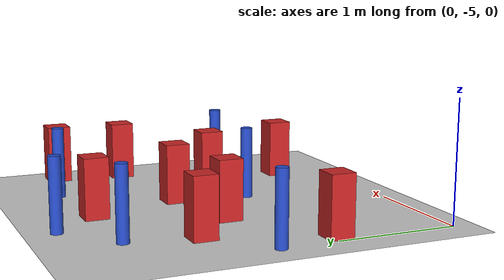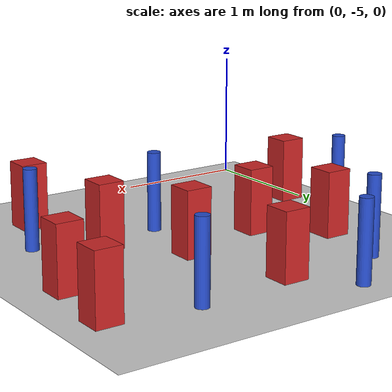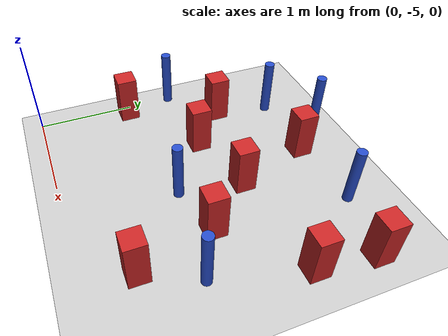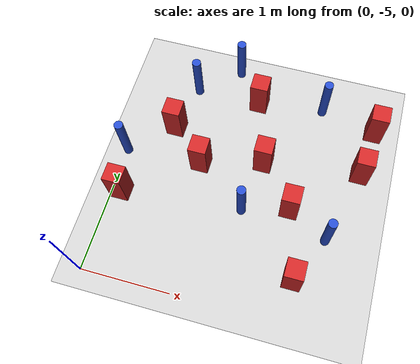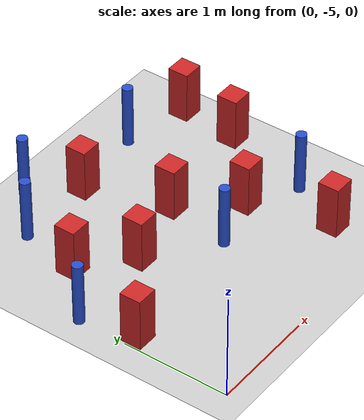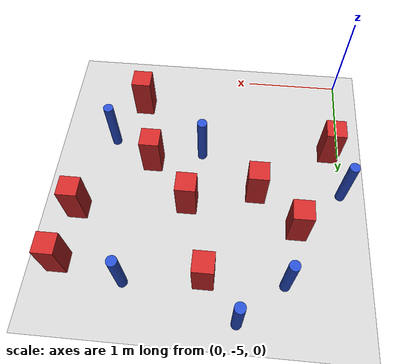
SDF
<sdf version="1.6">
 <world name="default">
  <model name="ground_plane">
   <static>1</static>
   <link name="link">
    <collision name="collision">
     <geometry><plane><normal>0 0 1</normal><size>100 100</size></plane></geometry>
     <surface><friction><ode><mu>100</mu><mu2>50</mu2></ode></friction></surface>
    </collision>
    <visual name="visual">
     <cast_shadows>0</cast_shadows>
     <geometry><plane><normal>0 0 1</normal><size>100 100</size></plane></geometry>
     <material>
      <ambient>1.0 1.0 1.0 1.0</ambient>
      <diffuse>0.8 0.8 0.8 1.0</diffuse>
      <specular>0.01 0.01 0.01 1.000000</specular>
     </material>
    </visual>
   </link>
  </model>
  <model name="pole_obstacle30">
   <static>true</static>
   <pose>2.09955300384 -2.43860249127 7.38925637345e-09 -8.47170692798e-08 1.24976764939e-08 -1.74513093025e-07</pose>
   <link name="link">
    <pose>0 0 0.3 0 -0 0</pose>
    <inertial>
     <mass>1</mass>
     <inertia><ixx>0.145833</ixx><ixy>0</ixy><ixz>0</ixz><iyy>0.145833</iyy><iyz>0</iyz><izz>0.125</izz></inertia>
    </inertial>
    <collision name="collision">
     <geometry><cylinder><radius>0.05</radius><length>.6</length></cylinder></geometry>
    </collision>
    <visual name="visual">
     <geometry><cylinder><radius>0.05</radius><length>.6</length></cylinder></geometry>
     <material>
      <script><name>Gazebo/Blue</name><uri>file://media/materials/scripts/gazebo.material</uri></script>
     </material>
    </visual>
   </link>
  </model>
  <model name="square_post_obstacle41">
   <static>true</static>
   <pose>2.19690369852 -4.53238713483 1.91545236811e-07 -7.35059704564e-06 1.12565212e-07 2.39332434364e-05</pose>
   <link name="link">
    <pose>0 0 0.25 0 -0 0</pose>
    <inertial>
     <mass>100</mass>
     <inertia>
      <ixx>0.166667</ixx>
      <ixy>0</ixy>
      <ixz>0</ixz>
      <iyy>0.166667</iyy>
      <iyz>0</iyz>
      <izz>0.166667</izz>
     </inertia>
    </inertial>
    <collision name="collision"><geometry><box><size>.2 .2 .5</size></box></geometry></collision>
    <visual name="visual">
     <geometry><box><size>.2 .2 .5</size></box></geometry>
     <material>
      <script><name>Gazebo/Red</name><uri>file://media/materials/scripts/gazebo.material</uri></script>
     </material>
    </visual>
   </link>
  </model>
  <model name="pole_obstacle84">
   <static>true</static>
   <pose>0.574053270509 -2.53474685124 7.38925637345e-09 -8.47170692799e-08 1.2497676509e-08 -1.74513093016e-07</pose>
   <link name="link">
    <pose>0 0 0.3 0 -0 0</pose>
    <inertial>
     <mass>1</mass>
     <inertia><ixx>0.145833</ixx><ixy>0</ixy><ixz>0</ixz><iyy>0.145833</iyy><iyz>0</iyz><izz>0.125</izz></inertia>
    </inertial>
    <collision name="collision">
     <geometry><cylinder><radius>0.05</radius><length>.6</length></cylinder></geometry>
    </collision>
    <visual name="visual">
     <geometry><cylinder><radius>0.05</radius><length>.6</length></cylinder></geometry>
     <material>
      <script><name>Gazebo/Blue</name><uri>file://media/materials/scripts/gazebo.material</uri></script>
     </material>
    </visual>
   </link>
  </model>
  <model name="pole_obstacle90">
   <static>true</static>
   <pose>1.47961067431 -3.91612197463 7.38925637345e-09 -8.47170692799e-08 1.24976765053e-08 -1.74513093017e-07</pose>
   <link name="link">
    <pose>0 0 0.3 0 -0 0</pose>
    <inertial>
     <mass>1</mass>
     <inertia><ixx>0.145833</ixx><ixy>0</ixy><ixz>0</ixz><iyy>0.145833</iyy><iyz>0</iyz><izz>0.125</izz></inertia>
    </inertial>
    <collision name="collision">
     <geometry><cylinder><radius>0.05</radius><length>.6</length></cylinder></geometry>
    </collision>
    <visual name="visual">
     <geometry><cylinder><radius>0.05</radius><length>.6</length></cylinder></geometry>
     <material>
      <script><name>Gazebo/Blue</name><uri>file://media/materials/scripts/gazebo.material</uri></script>
     </material>
    </visual>
   </link>
  </model>
  <model name="square_post_obstacle95">
   <static>true</static>
   <pose>1.33881672779 -2.53437425877 1.91545236811e-07 -7.35059704564e-06 1.12565212e-07 2.39332434364e-05</pose>
   <link name="link">
    <pose>0 0 0.25 0 -0 0</pose>
    <inertial>
     <mass>100</mass>
     <inertia>
      <ixx>0.166667</ixx>
      <ixy>0</ixy>
      <ixz>0</ixz>
      <iyy>0.166667</iyy>
      <iyz>0</iyz>
      <izz>0.166667</izz>
     </inertia>
    </inertial>
    <collision name="collision"><geometry><box><size>.2 .2 .5</size></box></geometry></collision>
    <visual name="visual">
     <geometry><box><size>.2 .2 .5</size></box></geometry>
     <material>
      <script><name>Gazebo/Red</name><uri>file://media/materials/scripts/gazebo.material</uri></script>
     </material>
    </visual>
   </link>
  </model>
  <model name="square_post_obstacle97">
   <static>true</static>
   <pose>0.118160823223 -4.04125096551 1.91545236811e-07 -7.35059704564e-06 1.12565212e-07 2.39332434364e-05</pose>
   <link name="link">
    <pose>0 0 0.25 0 -0 0</pose>
    <inertial>
     <mass>100</mass>
     <inertia>
      <ixx>0.166667</ixx>
      <ixy>0</ixy>
      <ixz>0</ixz>
      <iyy>0.166667</iyy>
      <iyz>0</iyz>
      <izz>0.166667</izz>
     </inertia>
    </inertial>
    <collision name="collision"><geometry><box><size>.2 .2 .5</size></box></geometry></collision>
    <visual name="visual">
     <geometry><box><size>.2 .2 .5</size></box></geometry>
     <material>
      <script><name>Gazebo/Red</name><uri>file://media/materials/scripts/gazebo.material</uri></script>
     </material>
    </visual>
   </link>
  </model>
  <model name="square_post_obstacle103">
   <static>true</static>
   <pose>0.885248632562 -3.48122219986 1.91545236811e-07 -7.35059704564e-06 1.12565212e-07 2.39332434364e-05</pose>
   <link name="link">
    <pose>0 0 0.25 0 -0 0</pose>
    <inertial>
     <mass>100</mass>
     <inertia>
      <ixx>0.166667</ixx>
      <ixy>0</ixy>
      <ixz>0</ixz>
      <iyy>0.166667</iyy>
      <iyz>0</iyz>
      <izz>0.166667</izz>
     </inertia>
    </inertial>
    <collision name="collision"><geometry><box><size>.2 .2 .5</size></box></geometry></collision>
    <visual name="visual">
     <geometry><box><size>.2 .2 .5</size></box></geometry>
     <material>
      <script><name>Gazebo/Red</name><uri>file://media/materials/scripts/gazebo.material</uri></script>
     </material>
    </visual>
   </link>
  </model>
  <model name="square_post_obstacle112">
   <static>true</static>
   <pose>2.74129988262 -2.58109546138 1.91545236811e-07 -7.35059704564e-06 1.12565212e-07 2.39332434364e-05</pose>
   <link name="link">
    <pose>0 0 0.25 0 -0 0</pose>
    <inertial>
     <mass>100</mass>
     <inertia>
      <ixx>0.166667</ixx>
      <ixy>0</ixy>
      <ixz>0</ixz>
      <iyy>0.166667</iyy>
      <iyz>0</iyz>
      <izz>0.166667</izz>
     </inertia>
    </inertial>
    <collision name="collision"><geometry><box><size>.2 .2 .5</size></box></geometry></collision>
    <visual name="visual">
     <geometry><box><size>.2 .2 .5</size></box></geometry>
     <material>
      <script><name>Gazebo/Red</name><uri>file://media/materials/scripts/gazebo.material</uri></script>
     </material>
    </visual>
   </link>
  </model>
  <model name="pole_obstacle163">
   <static>true</static>
   <pose>1.009382235 -2.15213785722 7.38925637345e-09 -8.471706928e-08 1.2497676505e-08 -1.74513093017e-07</pose>
   <link name="link">
    <pose>0 0 0.3 0 -0 0</pose>
    <inertial>
     <mass>1</mass>
     <inertia><ixx>0.145833</ixx><ixy>0</ixy><ixz>0</ixz><iyy>0.145833</iyy><iyz>0</iyz><izz>0.125</izz></inertia>
    </inertial>
    <collision name="collision">
     <geometry><cylinder><radius>0.05</radius><length>.6</length></cylinder></geometry>
    </collision>
    <visual name="visual">
     <geometry><cylinder><radius>0.05</radius><length>.6</length></cylinder></geometry>
     <material>
      <script><name>Gazebo/Blue</name><uri>file://media/materials/scripts/gazebo.material</uri></script>
     </material>
    </visual>
   </link>
  </model>
  <model name="square_post_obstacle160">
   <static>true</static>
   <pose>0.465923648906 -3.10475022817 1.91545236811e-07 -7.35059704564e-06 1.12565212e-07 2.39332434364e-05</pose>
   <link name="link">
    <pose>0 0 0.25 0 -0 0</pose>
    <inertial>
     <mass>100</mass>
     <inertia>
      <ixx>0.166667</ixx>
      <ixy>0</ixy>
      <ixz>0</ixz>
      <iyy>0.166667</iyy>
      <iyz>0</iyz>
      <izz>0.166667</izz>
     </inertia>
    </inertial>
    <collision name="collision"><geometry><box><size>.2 .2 .5</size></box></geometry></collision>
    <visual name="visual">
     <geometry><box><size>.2 .2 .5</size></box></geometry>
     <material>
      <script><name>Gazebo/Red</name><uri>file://media/materials/scripts/gazebo.material</uri></script>
     </material>
    </visual>
   </link>
  </model>
  <model name="pole_obstacle178">
   <static>true</static>
   <pose>0.00317556264261 -3.53280103413 7.38925637345e-09 -8.471706928e-08 1.24976765128e-08 -1.74513093013e-07</pose>
   <link name="link">
    <pose>0 0 0.3 0 -0 0</pose>
    <inertial>
     <mass>1</mass>
     <inertia><ixx>0.145833</ixx><ixy>0</ixy><ixz>0</ixz><iyy>0.145833</iyy><iyz>0</iyz><izz>0.125</izz></inertia>
    </inertial>
    <collision name="collision">
     <geometry><cylinder><radius>0.05</radius><length>.6</length></cylinder></geometry>
    </collision>
    <visual name="visual">
     <geometry><cylinder><radius>0.05</radius><length>.6</length></cylinder></geometry>
     <material>
      <script><name>Gazebo/Blue</name><uri>file://media/materials/scripts/gazebo.material</uri></script>
     </material>
    </visual>
   </link>
  </model>
  <model name="square_post_obstacle186">
   <static>true</static>
   <pose>1.5776471744 -3.29787874085 1.91545236811e-07 -7.35059704564e-06 1.12565212e-07 2.39332434364e-05</pose>
   <link name="link">
    <pose>0 0 0.25 0 -0 0</pose>
    <inertial>
     <mass>100</mass>
     <inertia>
      <ixx>0.166667</ixx>
      <ixy>0</ixy>
      <ixz>0</ixz>
      <iyy>0.166667</iyy>
      <iyz>0</iyz>
      <izz>0.166667</izz>
     </inertia>
    </inertial>
    <collision name="collision"><geometry><box><size>.2 .2 .5</size></box></geometry></collision>
    <visual name="visual">
     <geometry><box><size>.2 .2 .5</size></box></geometry>
     <material>
      <script><name>Gazebo/Red</name><uri>file://media/materials/scripts/gazebo.material</uri></script>
     </material>
    </visual>
   </link>
  </model>
  <model name="square_post_obstacle194">
   <static>true</static>
   <pose>2.67621945266 -3.15454423479 1.91545236811e-07 -7.35059704564e-06 1.12565212e-07 2.39332434364e-05</pose>
   <link name="link">
    <pose>0 0 0.25 0 -0 0</pose>
    <inertial>
     <mass>100</mass>
     <inertia>
      <ixx>0.166667</ixx>
      <ixy>0</ixy>
      <ixz>0</ixz>
      <iyy>0.166667</iyy>
      <iyz>0</iyz>
      <izz>0.166667</izz>
     </inertia>
    </inertial>
    <collision name="collision"><geometry><box><size>.2 .2 .5</size></box></geometry></collision>
    <visual name="visual">
     <geometry><box><size>.2 .2 .5</size></box></geometry>
     <material>
      <script><name>Gazebo/Red</name><uri>file://media/materials/scripts/gazebo.material</uri></script>
     </material>
    </visual>
   </link>
  </model>
  <model name="pole_obstacle210">
   <static>true</static>
   <pose>2.44800761284 -4.02085416439 7.38925637345e-09 -8.47170692799e-08 1.24976764995e-08 -1.74513093021e-07</pose>
   <link name="link">
    <pose>0 0 0.3 0 -0 0</pose>
    <inertial>
     <mass>1</mass>
     <inertia><ixx>0.145833</ixx><ixy>0</ixy><ixz>0</ixz><iyy>0.145833</iyy><iyz>0</iyz><izz>0.125</izz></inertia>
    </inertial>
    <collision name="collision">
     <geometry><cylinder><radius>0.05</radius><length>.6</length></cylinder></geometry>
    </collision>
    <visual name="visual">
     <geometry><cylinder><radius>0.05</radius><length>.6</length></cylinder></geometry>
     <material>
      <script><name>Gazebo/Blue</name><uri>file://media/materials/scripts/gazebo.material</uri></script>
     </material>
    </visual>
   </link>
  </model>
  <model name="square_post_obstacle226">
   <static>true</static>
   <pose>1.99412981843 -3.77247739307 1.91545236811e-07 -7.35059704564e-06 1.12565212e-07 2.39332434364e-05</pose>
   <link name="link">
    <pose>0 0 0.25 0 -0 0</pose>
    <inertial>
     <mass>100</mass>
     <inertia>
      <ixx>0.166667</ixx>
      <ixy>0</ixy>
      <ixz>0</ixz>
      <iyy>0.166667</iyy>
      <iyz>0</iyz>
      <izz>0.166667</izz>
     </inertia>
    </inertial>
    <collision name="collision"><geometry><box><size>.2 .2 .5</size></box></geometry></collision>
    <visual name="visual">
     <geometry><box><size>.2 .2 .5</size></box></geometry>
     <material>
      <script><name>Gazebo/Red</name><uri>file://media/materials/scripts/gazebo.material</uri></script>
     </material>
    </visual>
   </link>
  </model>
 </world>
</sdf>
